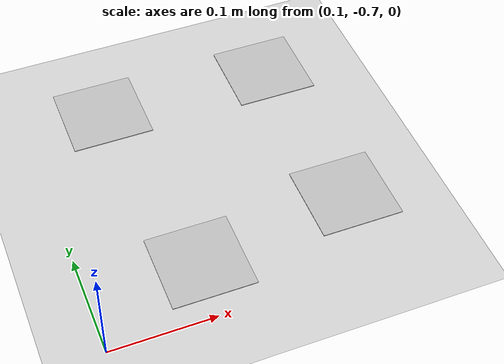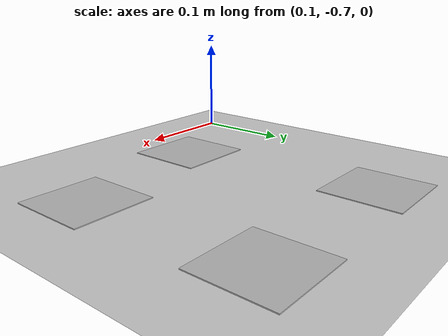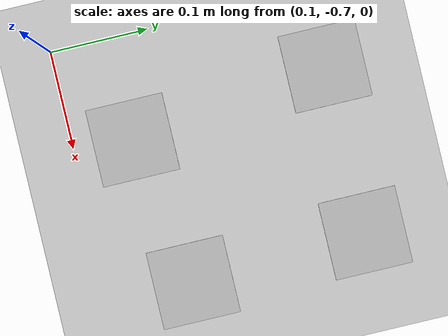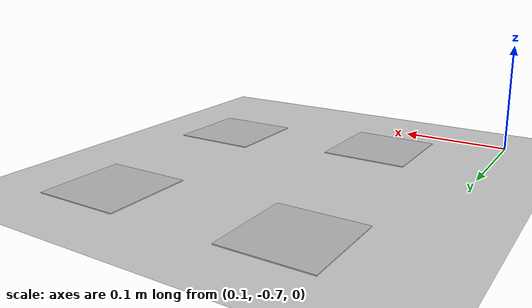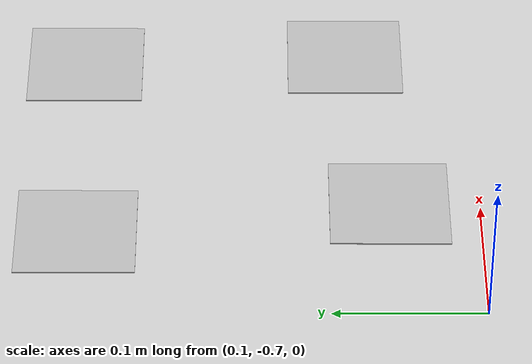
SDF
<sdf version="1.6">
 <world name="default">
  <light name="sun" type="directional">
   <pose>0 0 10 0 -0 0</pose>
   <diffuse>0.8 0.8 0.8 1</diffuse>
   <specular>0.2 0.2 0.2 1</specular>
   <attenuation>
    <range>1000</range>
    <constant>0.9</constant>
    <linear>0.01</linear>
    <quadratic>0.001</quadratic>
   </attenuation>
   <direction>-0.5 0.1 -0.9</direction>
  </light>
  <model name="ground_plane">
   <static>1</static>
   <link name="link">
    <collision name="collision">
     <geometry><plane><normal>0 0 1</normal><size>100 100</size></plane></geometry>
     <surface><friction><ode><mu>100</mu><mu2>50</mu2></ode></friction></surface>
    </collision>
    <visual name="visual">
     <cast_shadows>0</cast_shadows>
     <geometry><plane><normal>0 0 1</normal><size>100 100</size></plane></geometry>
     <material>
      <script><uri>file://media/materials/scripts/gazebo.material</uri><name>Gazebo/Grey</name></script>
     </material>
    </visual>
   </link>
  </model>
  <gravity>0 0 -9.8</gravity>
  <magnetic_field>6e-06 2.3e-05 -4.2e-05</magnetic_field>
  <atmosphere type="adiabatic"/>
  <physics name="default_physics" default="0" type="ode">
   <max_step_size>0.001</max_step_size>
   <real_time_factor>1</real_time_factor>
   <real_time_update_rate>1000</real_time_update_rate>
  </physics>
  <scene><ambient>0.4 0.4 0.4 1</ambient><background>0.7 0.7 0.7 1</background><shadows>1</shadows></scene>
  <audio><device>default</device></audio>
  <spherical_coordinates>
   <surface_model>EARTH_WGS84</surface_model>
   <latitude_deg>0</latitude_deg>
   <longitude_deg>0</longitude_deg>
   <elevation>0</elevation>
   <heading_deg>0</heading_deg>
  </spherical_coordinates>
  <model name="aruco_code_000">
   <static>1</static>
   <link name="link">
    <collision name="collision"><geometry><box><size>0.079 0.079 0.001</size></box></geometry></collision>
    <visual name="visual">
     <geometry><box><size>0.079 0.079 0.001</size></box></geometry>
     <material>
      <script>
       <uri>model://aruco_code_000/materials/scripts</uri>
       <uri>model://aruco_code_000/materials/textures</uri>
       <name>ac/aruco_code_000</name>
      </script>
     </material>
    </visual>
   </link>
   <pose>0.204923 -0.640131 0 0 -0 0</pose>
  </model>
  <model name="aruco_code_001">
   <static>1</static>
   <link name="link">
    <collision name="collision"><geometry><box><size>0.079 0.079 0.001</size></box></geometry></collision>
    <visual name="visual">
     <geometry><box><size>0.079 0.079 0.001</size></box></geometry>
     <material>
      <script>
       <uri>model://aruco_code_001/materials/scripts</uri>
       <uri>model://aruco_code_001/materials/textures</uri>
       <name>ac/aruco_code_001</name>
      </script>
     </material>
    </visual>
   </link>
   <pose>0.177541 -0.434928 0 0 -0 0</pose>
  </model>
  <model name="aruco_code_004">
   <static>1</static>
   <link name="link">
    <collision name="collision"><geometry><box><size>0.079 0.079 0.001</size></box></geometry></collision>
    <visual name="visual">
     <geometry><box><size>0.079 0.079 0.001</size></box></geometry>
     <material>
      <script>
       <uri>model://aruco_code_004/materials/scripts</uri>
       <uri>model://aruco_code_004/materials/textures</uri>
       <name>ac/aruco_code_004</name>
      </script>
     </material>
    </visual>
   </link>
   <pose>0.358204 -0.61409 0 0 -0 0</pose>
  </model>
  <model name="aruco_code_010">
   <static>1</static>
   <link name="link">
    <collision name="collision"><geometry><box><size>0.079 0.079 0.001</size></box></geometry></collision>
    <visual name="visual">
     <geometry><box><size>0.079 0.079 0.001</size></box></geometry>
     <material>
      <script>
       <uri>model://aruco_code_010/materials/scripts</uri>
       <uri>model://aruco_code_010/materials/textures</uri>
       <name>ac/aruco_code_010</name>
      </script>
     </material>
    </visual>
   </link>
   <pose>0.349942 -0.434403 0 0 -0 0</pose>
  </model>
 </world>
</sdf>
